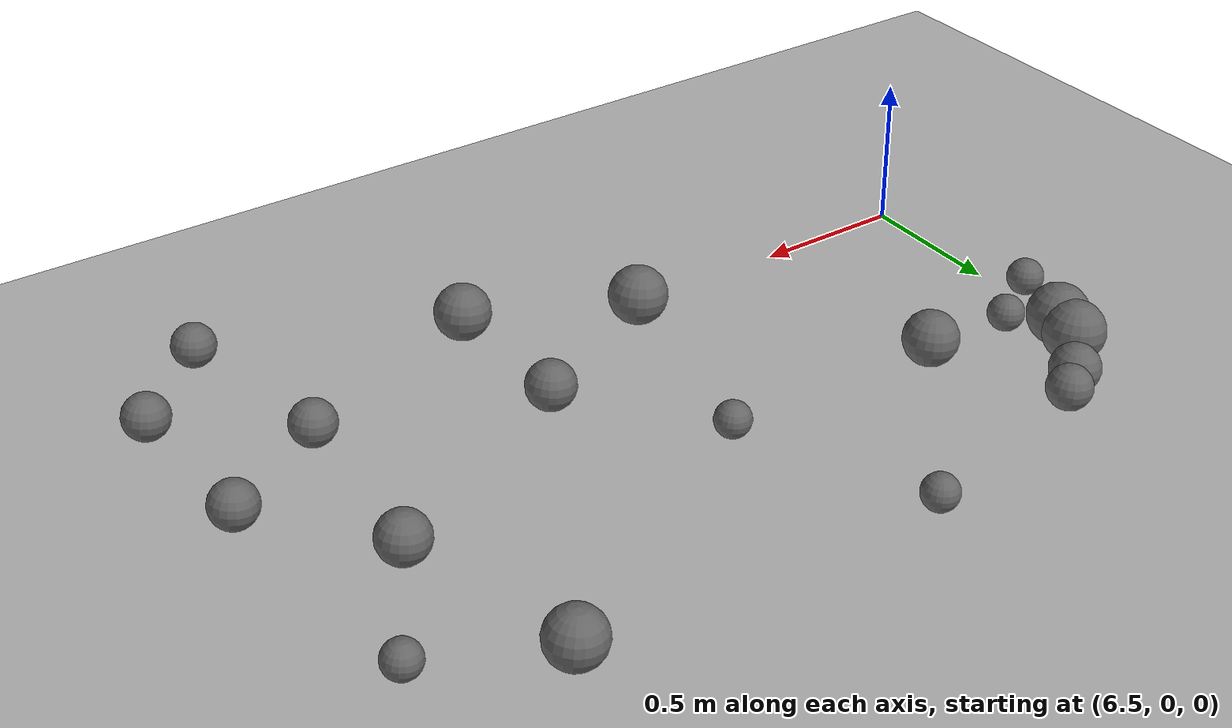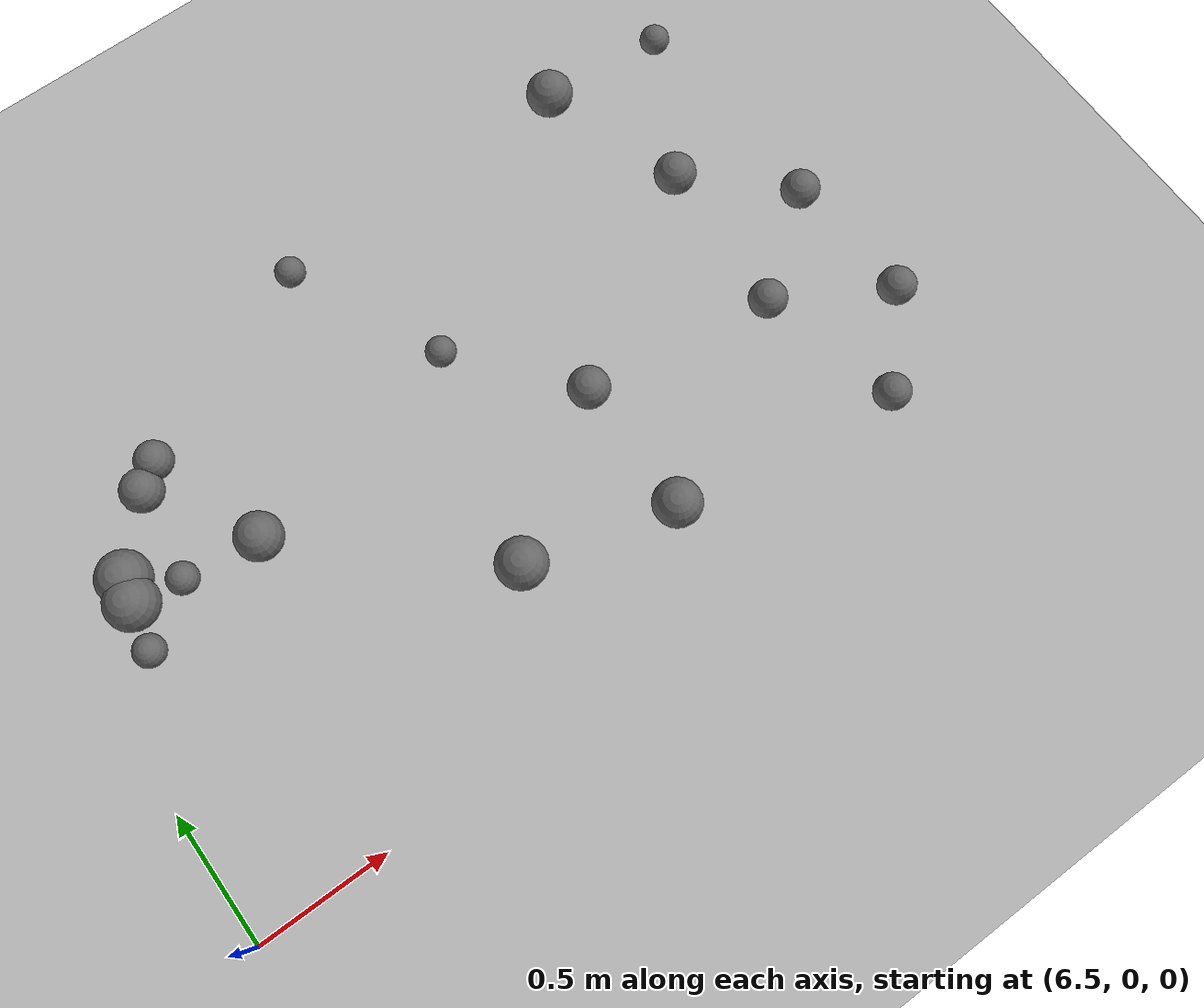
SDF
<sdf version="1.8">
 <world name="extreme_disturbance_parkour">
  <model name="ground_plane">
   <static>true</static>
   <link name="link">
    <collision name="collision">
     <geometry><plane><normal>0 0 1</normal><size>100 100</size></plane></geometry>
     <surface><friction><ode><mu>1.5</mu><mu2>1.5</mu2></ode></friction></surface>
    </collision>
    <visual name="visual">
     <geometry><plane><normal>0 0 1</normal><size>100 100</size></plane></geometry>
     <material><ambient>0.7 0.7 0.7 1</ambient><diffuse>0.7 0.7 0.7 1</diffuse></material>
    </visual>
   </link>
  </model>
  <model name="stone_0">
   <static>true</static>
   <pose>9.3757 0.4707 0.5406 0.0000 -0.1000 0.0000</pose>
   <link name="link">
    <collision name="collision">
     <geometry><sphere><radius>0.0648</radius></sphere></geometry>
     <surface><friction><ode><mu>100.0</mu><mu2>100.0</mu2></ode></friction></surface>
    </collision>
    <visual name="visual">
     <geometry><sphere><radius>0.0648</radius></sphere></geometry>
     <material><ambient>0.3 0.3 0.3 1</ambient><diffuse>0.4 0.4 0.4 1</diffuse></material>
    </visual>
   </link>
  </model>
  <model name="stone_2">
   <static>true</static>
   <pose>7.2294 1.0473 0.2989 0.0000 -0.1000 0.0000</pose>
   <link name="link">
    <collision name="collision">
     <geometry><sphere><radius>0.0851</radius></sphere></geometry>
     <surface><friction><ode><mu>100.0</mu><mu2>100.0</mu2></ode></friction></surface>
    </collision>
    <visual name="visual">
     <geometry><sphere><radius>0.0851</radius></sphere></geometry>
     <material><ambient>0.3 0.3 0.3 1</ambient><diffuse>0.4 0.4 0.4 1</diffuse></material>
    </visual>
   </link>
  </model>
  <model name="stone_7">
   <static>true</static>
   <pose>8.0581 1.1895 0.4199 0.0000 -0.1000 0.0000</pose>
   <link name="link">
    <collision name="collision">
     <geometry><sphere><radius>0.0528</radius></sphere></geometry>
     <surface><friction><ode><mu>100.0</mu><mu2>100.0</mu2></ode></friction></surface>
    </collision>
    <visual name="visual">
     <geometry><sphere><radius>0.0528</radius></sphere></geometry>
     <material><ambient>0.3 0.3 0.3 1</ambient><diffuse>0.4 0.4 0.4 1</diffuse></material>
    </visual>
   </link>
  </model>
  <model name="stone_9">
   <static>true</static>
   <pose>9.0567 1.2301 0.5017 0.0000 -0.1000 0.0000</pose>
   <link name="link">
    <collision name="collision">
     <geometry><sphere><radius>0.0722</radius></sphere></geometry>
     <surface><friction><ode><mu>100.0</mu><mu2>100.0</mu2></ode></friction></surface>
    </collision>
    <visual name="visual">
     <geometry><sphere><radius>0.0722</radius></sphere></geometry>
     <material><ambient>0.3 0.3 0.3 1</ambient><diffuse>0.4 0.4 0.4 1</diffuse></material>
    </visual>
   </link>
  </model>
  <model name="stone_17">
   <static>true</static>
   <pose>9.0203 0.6874 0.5049 0.0000 -0.1000 0.0000</pose>
   <link name="link">
    <collision name="collision">
     <geometry><sphere><radius>0.0652</radius></sphere></geometry>
     <surface><friction><ode><mu>100.0</mu><mu2>100.0</mu2></ode></friction></surface>
    </collision>
    <visual name="visual">
     <geometry><sphere><radius>0.0652</radius></sphere></geometry>
     <material><ambient>0.3 0.3 0.3 1</ambient><diffuse>0.4 0.4 0.4 1</diffuse></material>
    </visual>
   </link>
  </model>
  <model name="stone_24">
   <static>true</static>
   <pose>6.7449 0.9363 0.2904 0.0000 -0.1000 0.0000</pose>
   <link name="link">
    <collision name="collision">
     <geometry><sphere><radius>0.0572</radius></sphere></geometry>
     <surface><friction><ode><mu>100.0</mu><mu2>100.0</mu2></ode></friction></surface>
    </collision>
    <visual name="visual">
     <geometry><sphere><radius>0.0572</radius></sphere></geometry>
     <material><ambient>0.3 0.3 0.3 1</ambient><diffuse>0.4 0.4 0.4 1</diffuse></material>
    </visual>
   </link>
  </model>
  <model name="stone_25">
   <static>true</static>
   <pose>6.7739 1.1132 0.2559 0.0000 -0.1000 0.0000</pose>
   <link name="link">
    <collision name="collision">
     <geometry><sphere><radius>0.0967</radius></sphere></geometry>
     <surface><friction><ode><mu>100.0</mu><mu2>100.0</mu2></ode></friction></surface>
    </collision>
    <visual name="visual">
     <geometry><sphere><radius>0.0967</radius></sphere></geometry>
     <material><ambient>0.3 0.3 0.3 1</ambient><diffuse>0.4 0.4 0.4 1</diffuse></material>
    </visual>
   </link>
  </model>
  <model name="stone_34">
   <static>true</static>
   <pose>7.8623 0.4618 0.3752 0.0000 -0.1000 0.0000</pose>
   <link name="link">
    <collision name="collision">
     <geometry><sphere><radius>0.0895</radius></sphere></geometry>
     <surface><friction><ode><mu>100.0</mu><mu2>100.0</mu2></ode></friction></surface>
    </collision>
    <visual name="visual">
     <geometry><sphere><radius>0.0895</radius></sphere></geometry>
     <material><ambient>0.3 0.3 0.3 1</ambient><diffuse>0.4 0.4 0.4 1</diffuse></material>
    </visual>
   </link>
  </model>
  <model name="stone_36">
   <static>true</static>
   <pose>9.1305 0.2008 0.5250 0.0000 -0.1000 0.0000</pose>
   <link name="link">
    <collision name="collision">
     <geometry><sphere><radius>0.0622</radius></sphere></geometry>
     <surface><friction><ode><mu>100.0</mu><mu2>100.0</mu2></ode></friction></surface>
    </collision>
    <visual name="visual">
     <geometry><sphere><radius>0.0622</radius></sphere></geometry>
     <material><ambient>0.3 0.3 0.3 1</ambient><diffuse>0.4 0.4 0.4 1</diffuse></material>
    </visual>
   </link>
  </model>
  <model name="stone_54">
   <static>true</static>
   <pose>7.0863 1.4678 0.3031 0.0000 -0.1000 0.0000</pose>
   <link name="link">
    <collision name="collision">
     <geometry><sphere><radius>0.0682</radius></sphere></geometry>
     <surface><friction><ode><mu>100.0</mu><mu2>100.0</mu2></ode></friction></surface>
    </collision>
    <visual name="visual">
     <geometry><sphere><radius>0.0682</radius></sphere></geometry>
     <material><ambient>0.3 0.3 0.3 1</ambient><diffuse>0.4 0.4 0.4 1</diffuse></material>
    </visual>
   </link>
  </model>
  <model name="stone_57">
   <static>true</static>
   <pose>8.3766 0.7990 0.4358 0.0000 -0.1000 0.0000</pose>
   <link name="link">
    <collision name="collision">
     <geometry><sphere><radius>0.0725</radius></sphere></geometry>
     <surface><friction><ode><mu>100.0</mu><mu2>100.0</mu2></ode></friction></surface>
    </collision>
    <visual name="visual">
     <geometry><sphere><radius>0.0725</radius></sphere></geometry>
     <material><ambient>0.3 0.3 0.3 1</ambient><diffuse>0.4 0.4 0.4 1</diffuse></material>
    </visual>
   </link>
  </model>
  <model name="stone_64">
   <static>true</static>
   <pose>9.3462 0.9279 0.5346 0.0000 -0.1000 0.0000</pose>
   <link name="link">
    <collision name="collision">
     <geometry><sphere><radius>0.0657</radius></sphere></geometry>
     <surface><friction><ode><mu>100.0</mu><mu2>100.0</mu2></ode></friction></surface>
    </collision>
    <visual name="visual">
     <geometry><sphere><radius>0.0657</radius></sphere></geometry>
     <material><ambient>0.3 0.3 0.3 1</ambient><diffuse>0.4 0.4 0.4 1</diffuse></material>
    </visual>
   </link>
  </model>
  <model name="stone_72">
   <static>true</static>
   <pose>7.8113 1.7278 0.4061 0.0000 -0.1000 0.0000</pose>
   <link name="link">
    <collision name="collision">
     <geometry><sphere><radius>0.0530</radius></sphere></geometry>
     <surface><friction><ode><mu>100.0</mu><mu2>100.0</mu2></ode></friction></surface>
    </collision>
    <visual name="visual">
     <geometry><sphere><radius>0.0530</radius></sphere></geometry>
     <material><ambient>0.3 0.3 0.3 1</ambient><diffuse>0.4 0.4 0.4 1</diffuse></material>
    </visual>
   </link>
  </model>
  <model name="stone_75">
   <static>true</static>
   <pose>8.9026 1.7373 0.4785 0.0000 -0.1000 0.0000</pose>
   <link name="link">
    <collision name="collision">
     <geometry><sphere><radius>0.0810</radius></sphere></geometry>
     <surface><friction><ode><mu>100.0</mu><mu2>100.0</mu2></ode></friction></surface>
    </collision>
    <visual name="visual">
     <geometry><sphere><radius>0.0810</radius></sphere></geometry>
     <material><ambient>0.3 0.3 0.3 1</ambient><diffuse>0.4 0.4 0.4 1</diffuse></material>
    </visual>
   </link>
  </model>
  <model name="stone_76">
   <static>true</static>
   <pose>7.0000 1.4027 0.2996 0.0000 -0.1000 0.0000</pose>
   <link name="link">
    <collision name="collision">
     <geometry><sphere><radius>0.0760</radius></sphere></geometry>
     <surface><friction><ode><mu>100.0</mu><mu2>100.0</mu2></ode></friction></surface>
    </collision>
    <visual name="visual">
     <geometry><sphere><radius>0.0760</radius></sphere></geometry>
     <material><ambient>0.3 0.3 0.3 1</ambient><diffuse>0.4 0.4 0.4 1</diffuse></material>
    </visual>
   </link>
  </model>
  <model name="stone_82">
   <static>true</static>
   <pose>6.9553 1.0720 0.3023 0.0000 -0.1000 0.0000</pose>
   <link name="link">
    <collision name="collision">
     <geometry><sphere><radius>0.0564</radius></sphere></geometry>
     <surface><friction><ode><mu>100.0</mu><mu2>100.0</mu2></ode></friction></surface>
    </collision>
    <visual name="visual">
     <geometry><sphere><radius>0.0564</radius></sphere></geometry>
     <material><ambient>0.3 0.3 0.3 1</ambient><diffuse>0.4 0.4 0.4 1</diffuse></material>
    </visual>
   </link>
  </model>
  <model name="stone_88">
   <static>true</static>
   <pose>9.2916 1.6599 0.5549 0.0000 -0.1000 0.0000</pose>
   <link name="link">
    <collision name="collision">
     <geometry><sphere><radius>0.0503</radius></sphere></geometry>
     <surface><friction><ode><mu>100.0</mu><mu2>100.0</mu2></ode></friction></surface>
    </collision>
    <visual name="visual">
     <geometry><sphere><radius>0.0503</radius></sphere></geometry>
     <material><ambient>0.3 0.3 0.3 1</ambient><diffuse>0.4 0.4 0.4 1</diffuse></material>
    </visual>
   </link>
  </model>
  <model name="stone_90">
   <static>true</static>
   <pose>8.3747 0.3237 0.4261 0.0000 -0.1000 0.0000</pose>
   <link name="link">
    <collision name="collision">
     <geometry><sphere><radius>0.0837</radius></sphere></geometry>
     <surface><friction><ode><mu>100.0</mu><mu2>100.0</mu2></ode></friction></surface>
    </collision>
    <visual name="visual">
     <geometry><sphere><radius>0.0837</radius></sphere></geometry>
     <material><ambient>0.3 0.3 0.3 1</ambient><diffuse>0.4 0.4 0.4 1</diffuse></material>
    </visual>
   </link>
  </model>
  <model name="stone_119">
   <static>true</static>
   <pose>6.7941 1.2014 0.2461 0.0000 -0.1000 0.0000</pose>
   <link name="link">
    <collision name="collision">
     <geometry><sphere><radius>0.0973</radius></sphere></geometry>
     <surface><friction><ode><mu>100.0</mu><mu2>100.0</mu2></ode></friction></surface>
    </collision>
    <visual name="visual">
     <geometry><sphere><radius>0.0973</radius></sphere></geometry>
     <material><ambient>0.3 0.3 0.3 1</ambient><diffuse>0.4 0.4 0.4 1</diffuse></material>
    </visual>
   </link>
  </model>
 </world>
</sdf>
